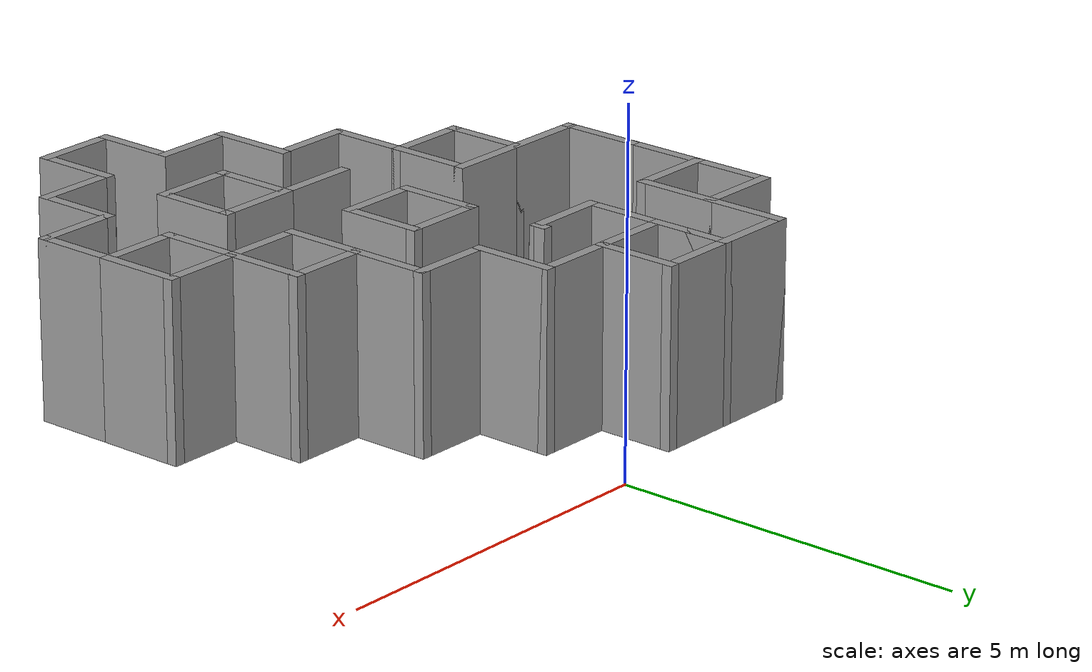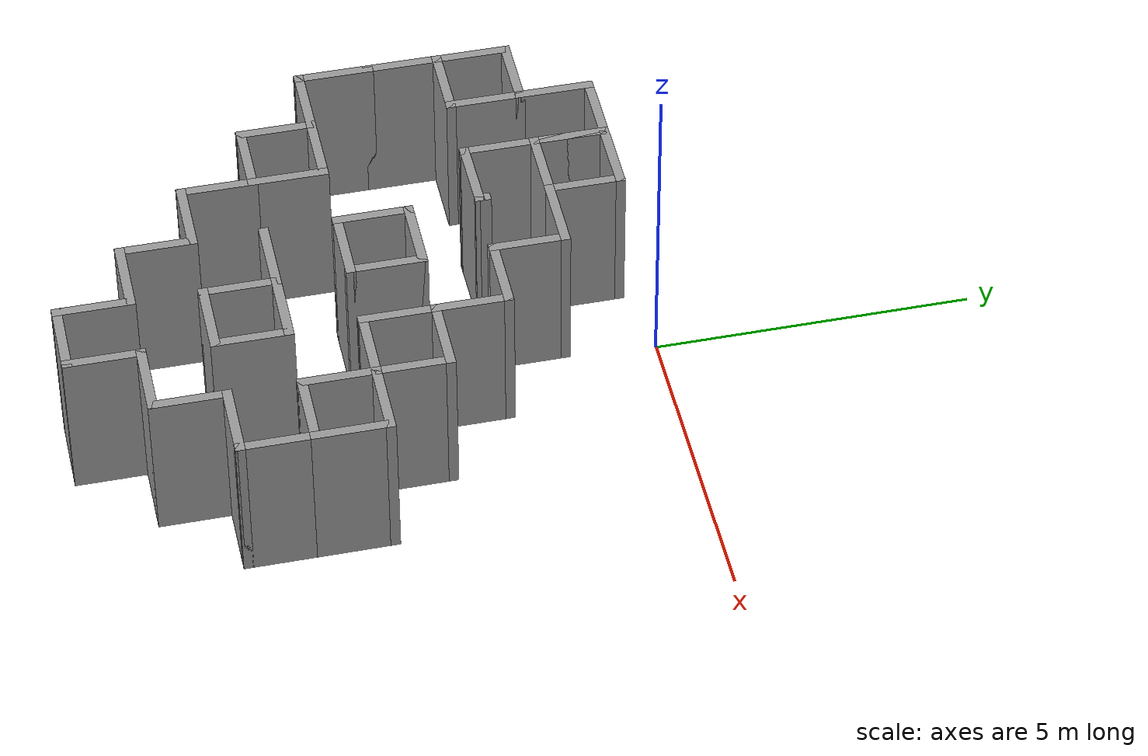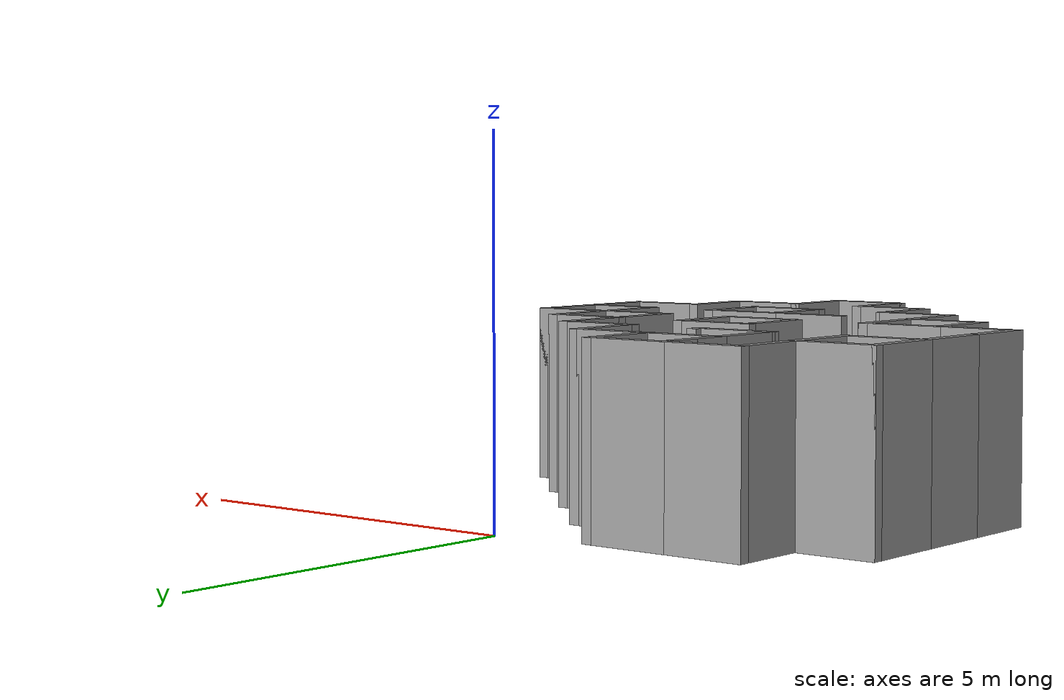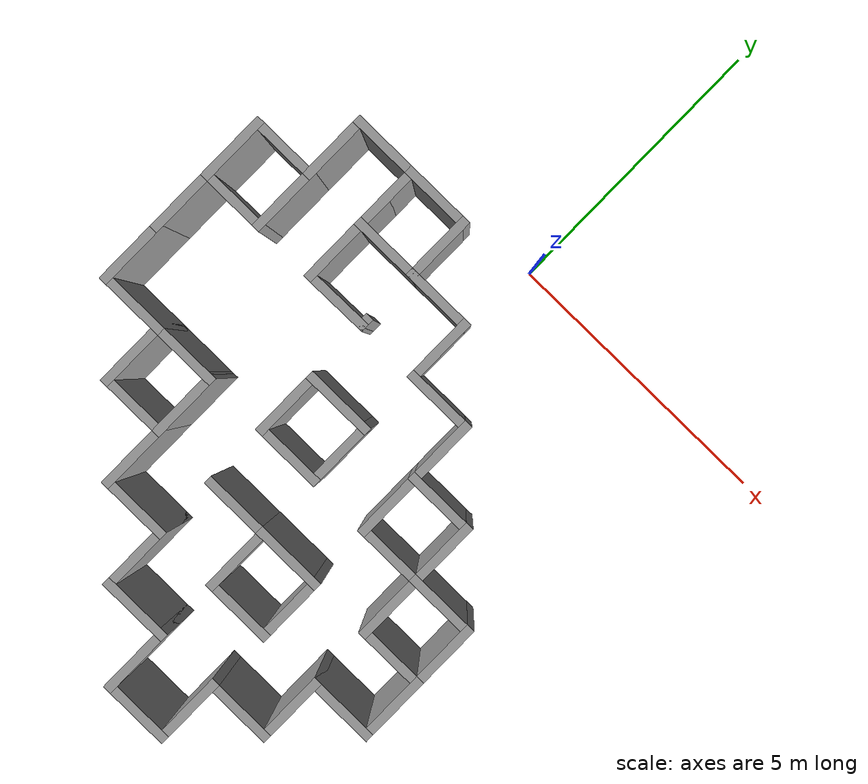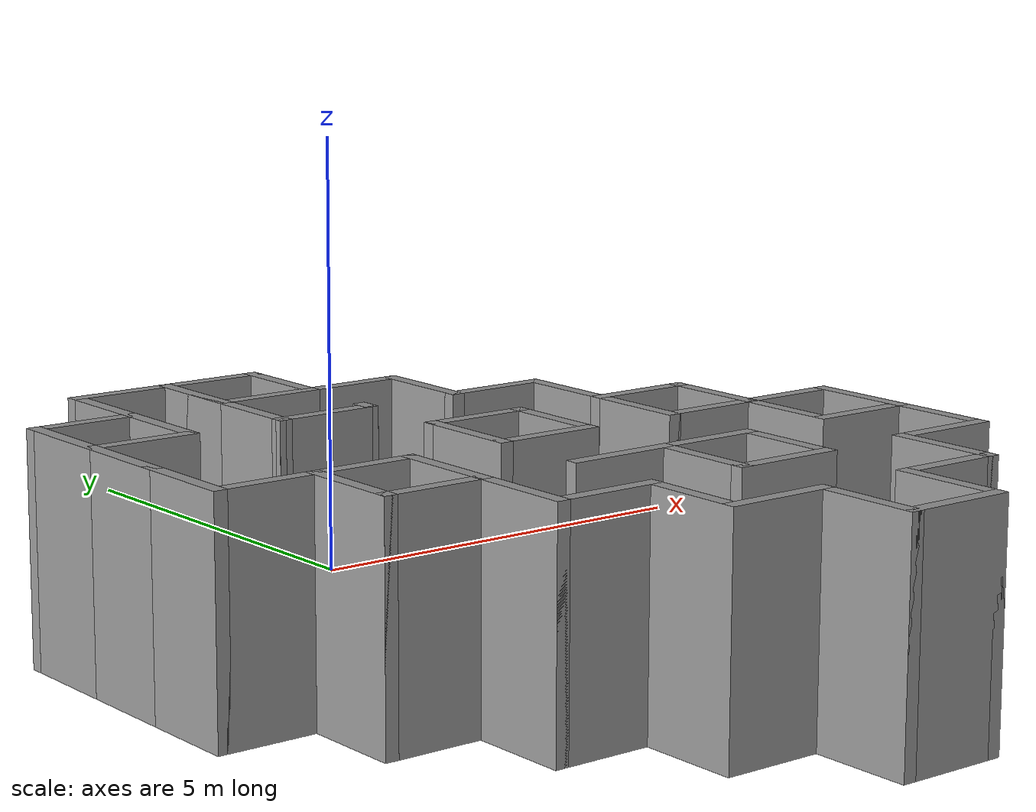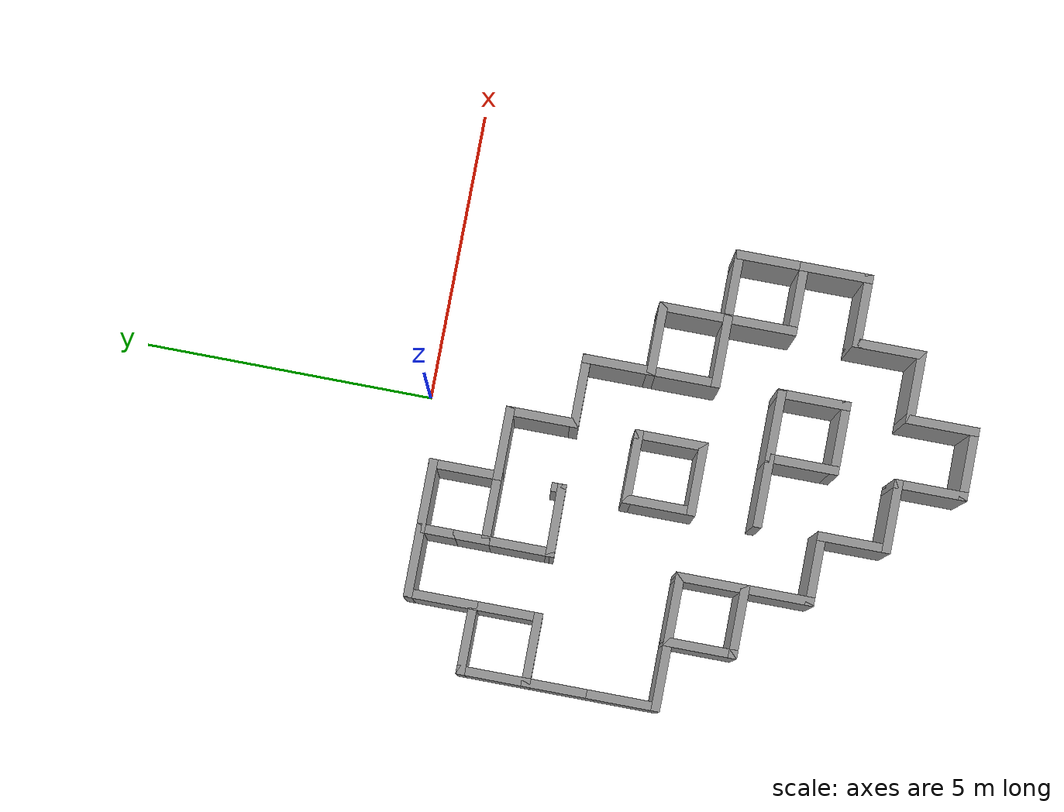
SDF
<?xml version='1.0'?>
<sdf version='1.7'>
  <model name='robotcup_map'>
    <pose>-0.7 -4.5975 0 0 -0 0</pose>
    <link name='Wall_0'>
      <collision name='Wall_0_Collision'>
        <geometry>
          <box>
            <size>1.25 0.15 2.5</size>
          </box>
        </geometry>
        <pose>0 0 1.25 0 -0 0</pose>
      </collision>
      <visual name='Wall_0_Visual'>
        <pose>0 0 1.25 0 -0 0</pose>
        <geometry>
          <box>
            <size>1.25 0.15 2.5</size>
          </box>
        </geometry>
        <material>
          <script>
            <uri>file://media/materials/scripts/gazebo.material</uri>
            <name>Gazebo/Grey</name>
          </script>
          <ambient>1 1 1 1</ambient>
        </material>
        <meta>
          <layer>0</layer>
        </meta>
      </visual>
      <pose>-3.85 2.6275 0 0 -0 -1.5708</pose>
    </link>
    <link name='Wall_1'>
      <collision name='Wall_1_Collision'>
        <geometry>
          <box>
            <size>1.25 0.15 2.5</size>
          </box>
        </geometry>
        <pose>0 0 1.25 0 -0 0</pose>
      </collision>
      <visual name='Wall_1_Visual'>
        <pose>0 0 1.25 0 -0 0</pose>
        <geometry>
          <box>
            <size>1.25 0.15 2.5</size>
          </box>
        </geometry>
        <material>
          <script>
            <uri>file://media/materials/scripts/gazebo.material</uri>
            <name>Gazebo/Grey</name>
          </script>
          <ambient>1 1 1 1</ambient>
        </material>
        <meta>
          <layer>0</layer>
        </meta>
      </visual>
      <pose>-3.85 1.5275 0 0 -0 -1.5708</pose>
    </link>
    <link name='Wall_10'>
      <collision name='Wall_10_Collision'>
        <geometry>
          <box>
            <size>1.25 0.15 2.5</size>
          </box>
        </geometry>
        <pose>0 0 1.25 0 -0 0</pose>
      </collision>
      <visual name='Wall_10_Visual'>
        <pose>0 0 1.25 0 -0 0</pose>
        <geometry>
          <box>
            <size>1.25 0.15 2.5</size>
          </box>
        </geometry>
        <material>
          <script>
            <uri>file://media/materials/scripts/gazebo.material</uri>
            <name>Gazebo/Grey</name>
          </script>
          <ambient>1 1 1 1</ambient>
        </material>
        <meta>
          <layer>0</layer>
        </meta>
      </visual>
      <pose>0 -3.4225 0 0 -0 0</pose>
    </link>
    <link name='Wall_13'>
      <collision name='Wall_13_Collision'>
        <geometry>
          <box>
            <size>1.25 0.15 2.5</size>
          </box>
        </geometry>
        <pose>0 0 1.25 0 -0 0</pose>
      </collision>
      <visual name='Wall_13_Visual'>
        <pose>0 0 1.25 0 -0 0</pose>
        <geometry>
          <box>
            <size>1.25 0.15 2.5</size>
          </box>
        </geometry>
        <material>
          <script>
            <uri>file://media/materials/scripts/gazebo.material</uri>
            <name>Gazebo/Grey</name>
          </script>
          <ambient>1 1 1 1</ambient>
        </material>
        <meta>
          <layer>0</layer>
        </meta>
      </visual>
      <pose>0.55 -3.9725 0 0 -0 -1.5708</pose>
    </link>
    <link name='Wall_15'>
      <collision name='Wall_15_Collision'>
        <geometry>
          <box>
            <size>1.25 0.15 2.5</size>
          </box>
        </geometry>
        <pose>0 0 1.25 0 -0 0</pose>
      </collision>
      <visual name='Wall_15_Visual'>
        <pose>0 0 1.25 0 -0 0</pose>
        <geometry>
          <box>
            <size>1.25 0.15 2.5</size>
          </box>
        </geometry>
        <material>
          <script>
            <uri>file://media/materials/scripts/gazebo.material</uri>
            <name>Gazebo/Grey</name>
          </script>
          <ambient>1 1 1 1</ambient>
        </material>
        <meta>
          <layer>0</layer>
        </meta>
      </visual>
      <pose>1.1 -4.5225 0 0 -0 0</pose>
    </link>
    <link name='Wall_16'>
      <collision name='Wall_16_Collision'>
        <geometry>
          <box>
            <size>1.25 0.15 2.5</size>
          </box>
        </geometry>
        <pose>0 0 1.25 0 -0 0</pose>
      </collision>
      <visual name='Wall_16_Visual'>
        <pose>0 0 1.25 0 -0 0</pose>
        <geometry>
          <box>
            <size>1.25 0.15 2.5</size>
          </box>
        </geometry>
        <material>
          <script>
            <uri>file://media/materials/scripts/gazebo.material</uri>
            <name>Gazebo/Grey</name>
          </script>
          <ambient>1 1 1 1</ambient>
        </material>
        <meta>
          <layer>0</layer>
        </meta>
      </visual>
      <pose>1.65 -3.9725 0 0 -0 1.5708</pose>
    </link>
    <link name='Wall_17'>
      <collision name='Wall_17_Collision'>
        <geometry>
          <box>
            <size>1.25 0.15 2.5</size>
          </box>
        </geometry>
        <pose>0 0 1.25 0 -0 0</pose>
      </collision>
      <visual name='Wall_17_Visual'>
        <pose>0 0 1.25 0 -0 0</pose>
        <geometry>
          <box>
            <size>1.25 0.15 2.5</size>
          </box>
        </geometry>
        <material>
          <script>
            <uri>file://media/materials/scripts/gazebo.material</uri>
            <name>Gazebo/Grey</name>
          </script>
          <ambient>1 1 1 1</ambient>
        </material>
        <meta>
          <layer>0</layer>
        </meta>
      </visual>
      <pose>2.2 -3.4225 0 0 -0 0</pose>
    </link>
    <link name='Wall_18'>
      <collision name='Wall_18_Collision'>
        <geometry>
          <box>
            <size>1.25 0.15 2.5</size>
          </box>
        </geometry>
        <pose>0 0 1.25 0 -0 0</pose>
      </collision>
      <visual name='Wall_18_Visual'>
        <pose>0 0 1.25 0 -0 0</pose>
        <geometry>
          <box>
            <size>1.25 0.15 2.5</size>
          </box>
        </geometry>
        <material>
          <script>
            <uri>file://media/materials/scripts/gazebo.material</uri>
            <name>Gazebo/Grey</name>
          </script>
          <ambient>1 1 1 1</ambient>
        </material>
        <meta>
          <layer>0</layer>
        </meta>
      </visual>
      <pose>2.75 -2.8725 0 0 -0 1.5708</pose>
    </link>
    <link name='Wall_19'>
      <collision name='Wall_19_Collision'>
        <geometry>
          <box>
            <size>1.25 0.15 2.5</size>
          </box>
        </geometry>
        <pose>0 0 1.25 0 -0 0</pose>
      </collision>
      <visual name='Wall_19_Visual'>
        <pose>0 0 1.25 0 -0 0</pose>
        <geometry>
          <box>
            <size>1.25 0.15 2.5</size>
          </box>
        </geometry>
        <material>
          <script>
            <uri>file://media/materials/scripts/gazebo.material</uri>
            <name>Gazebo/Grey</name>
          </script>
          <ambient>1 1 1 1</ambient>
        </material>
        <meta>
          <layer>0</layer>
        </meta>
      </visual>
      <pose>3.3 -2.3225 0 0 -0 0</pose>
    </link>
    <link name='Wall_2'>
      <collision name='Wall_2_Collision'>
        <geometry>
          <box>
            <size>1.25 0.15 2.5</size>
          </box>
        </geometry>
        <pose>0 0 1.25 0 -0 0</pose>
      </collision>
      <visual name='Wall_2_Visual'>
        <pose>0 0 1.25 0 -0 0</pose>
        <geometry>
          <box>
            <size>1.25 0.15 2.5</size>
          </box>
        </geometry>
        <material>
          <script>
            <uri>file://media/materials/scripts/gazebo.material</uri>
            <name>Gazebo/Grey</name>
          </script>
          <ambient>1 1 1 1</ambient>
        </material>
        <meta>
          <layer>0</layer>
        </meta>
      </visual>
      <pose>-3.85 0.4275 0 0 -0 -1.5708</pose>
    </link>
    <link name='Wall_20'>
      <collision name='Wall_20_Collision'>
        <geometry>
          <box>
            <size>1.25 0.15 2.5</size>
          </box>
        </geometry>
        <pose>0 0 1.25 0 -0 0</pose>
      </collision>
      <visual name='Wall_20_Visual'>
        <pose>0 0 1.25 0 -0 0</pose>
        <geometry>
          <box>
            <size>1.25 0.15 2.5</size>
          </box>
        </geometry>
        <material>
          <script>
            <uri>file://media/materials/scripts/gazebo.material</uri>
            <name>Gazebo/Grey</name>
          </script>
          <ambient>1 1 1 1</ambient>
        </material>
        <meta>
          <layer>0</layer>
        </meta>
      </visual>
      <pose>3.85 -1.7725 0 0 -0 1.5708</pose>
    </link>
    <link name='Wall_21'>
      <collision name='Wall_21_Collision'>
        <geometry>
          <box>
            <size>1.25 0.15 2.5</size>
          </box>
        </geometry>
        <pose>0 0 1.25 0 -0 0</pose>
      </collision>
      <visual name='Wall_21_Visual'>
        <pose>0 0 1.25 0 -0 0</pose>
        <geometry>
          <box>
            <size>1.25 0.15 2.5</size>
          </box>
        </geometry>
        <material>
          <script>
            <uri>file://media/materials/scripts/gazebo.material</uri>
            <name>Gazebo/Grey</name>
          </script>
          <ambient>1 1 1 1</ambient>
        </material>
        <meta>
          <layer>0</layer>
        </meta>
      </visual>
      <pose>3.85 -0.6725 0 0 -0 1.5708</pose>
    </link>
    <link name='Wall_22'>
      <collision name='Wall_22_Collision'>
        <geometry>
          <box>
            <size>1.25 0.15 2.5</size>
          </box>
        </geometry>
        <pose>0 0 1.25 0 -0 0</pose>
      </collision>
      <visual name='Wall_22_Visual'>
        <pose>0 0 1.25 0 -0 0</pose>
        <geometry>
          <box>
            <size>1.25 0.15 2.5</size>
          </box>
        </geometry>
        <material>
          <script>
            <uri>file://media/materials/scripts/gazebo.material</uri>
            <name>Gazebo/Grey</name>
          </script>
          <ambient>1 1 1 1</ambient>
        </material>
        <meta>
          <layer>0</layer>
        </meta>
      </visual>
      <pose>3.3 -0.1225 0 0 -0 3.14159</pose>
    </link>
    <link name='Wall_24'>
      <collision name='Wall_24_Collision'>
        <geometry>
          <box>
            <size>1.25 0.15 2.5</size>
          </box>
        </geometry>
        <pose>0 0 1.25 0 -0 0</pose>
      </collision>
      <visual name='Wall_24_Visual'>
        <pose>0 0 1.25 0 -0 0</pose>
        <geometry>
          <box>
            <size>1.25 0.15 2.5</size>
          </box>
        </geometry>
        <material>
          <script>
            <uri>file://media/materials/scripts/gazebo.material</uri>
            <name>Gazebo/Grey</name>
          </script>
          <ambient>1 1 1 1</ambient>
        </material>
        <meta>
          <layer>0</layer>
        </meta>
      </visual>
      <pose>2.75 0.4275 0 0 -0 1.5708</pose>
    </link>
    <link name='Wall_25'>
      <collision name='Wall_25_Collision'>
        <geometry>
          <box>
            <size>1.25 0.15 2.5</size>
          </box>
        </geometry>
        <pose>0 0 1.25 0 -0 0</pose>
      </collision>
      <visual name='Wall_25_Visual'>
        <pose>0 0 1.25 0 -0 0</pose>
        <geometry>
          <box>
            <size>1.25 0.15 2.5</size>
          </box>
        </geometry>
        <material>
          <script>
            <uri>file://media/materials/scripts/gazebo.material</uri>
            <name>Gazebo/Grey</name>
          </script>
          <ambient>1 1 1 1</ambient>
        </material>
        <meta>
          <layer>0</layer>
        </meta>
      </visual>
      <pose>2.2 0.9775 0 0 -0 3.14159</pose>
    </link>
    <link name='Wall_26'>
      <collision name='Wall_26_Collision'>
        <geometry>
          <box>
            <size>1.25 0.15 2.5</size>
          </box>
        </geometry>
        <pose>0 0 1.25 0 -0 0</pose>
      </collision>
      <visual name='Wall_26_Visual'>
        <pose>0 0 1.25 0 -0 0</pose>
        <geometry>
          <box>
            <size>1.25 0.15 2.5</size>
          </box>
        </geometry>
        <material>
          <script>
            <uri>file://media/materials/scripts/gazebo.material</uri>
            <name>Gazebo/Grey</name>
          </script>
          <ambient>1 1 1 1</ambient>
        </material>
        <meta>
          <layer>0</layer>
        </meta>
      </visual>
      <pose>1.65 1.5275 0 0 -0 1.5708</pose>
    </link>
    <link name='Wall_27'>
      <collision name='Wall_27_Collision'>
        <geometry>
          <box>
            <size>1.25 0.15 2.5</size>
          </box>
        </geometry>
        <pose>0 0 1.25 0 -0 0</pose>
      </collision>
      <visual name='Wall_27_Visual'>
        <pose>0 0 1.25 0 -0 0</pose>
        <geometry>
          <box>
            <size>1.25 0.15 2.5</size>
          </box>
        </geometry>
        <material>
          <script>
            <uri>file://media/materials/scripts/gazebo.material</uri>
            <name>Gazebo/Grey</name>
          </script>
          <ambient>1 1 1 1</ambient>
        </material>
        <meta>
          <layer>0</layer>
        </meta>
      </visual>
      <pose>1.1 2.0775 0 0 -0 3.14159</pose>
    </link>
    <link name='Wall_28'>
      <collision name='Wall_28_Collision'>
        <geometry>
          <box>
            <size>1.25 0.15 2.5</size>
          </box>
        </geometry>
        <pose>0 0 1.25 0 -0 0</pose>
      </collision>
      <visual name='Wall_28_Visual'>
        <pose>0 0 1.25 0 -0 0</pose>
        <geometry>
          <box>
            <size>1.25 0.15 2.5</size>
          </box>
        </geometry>
        <material>
          <script>
            <uri>file://media/materials/scripts/gazebo.material</uri>
            <name>Gazebo/Grey</name>
          </script>
          <ambient>1 1 1 1</ambient>
        </material>
        <meta>
          <layer>0</layer>
        </meta>
      </visual>
      <pose>0.55 2.6275 0 0 -0 1.5708</pose>
    </link>
    <link name='Wall_29'>
      <collision name='Wall_29_Collision'>
        <geometry>
          <box>
            <size>1.25 0.15 2.5</size>
          </box>
        </geometry>
        <pose>0 0 1.25 0 -0 0</pose>
      </collision>
      <visual name='Wall_29_Visual'>
        <pose>0 0 1.25 0 -0 0</pose>
        <geometry>
          <box>
            <size>1.25 0.15 2.5</size>
          </box>
        </geometry>
        <material>
          <script>
            <uri>file://media/materials/scripts/gazebo.material</uri>
            <name>Gazebo/Grey</name>
          </script>
          <ambient>1 1 1 1</ambient>
        </material>
        <meta>
          <layer>0</layer>
        </meta>
      </visual>
      <pose>0 3.1775 0 0 -0 3.14159</pose>
    </link>
    <link name='Wall_3'>
      <collision name='Wall_3_Collision'>
        <geometry>
          <box>
            <size>1.25 0.15 2.5</size>
          </box>
        </geometry>
        <pose>0 0 1.25 0 -0 0</pose>
      </collision>
      <visual name='Wall_3_Visual'>
        <pose>0 0 1.25 0 -0 0</pose>
        <geometry>
          <box>
            <size>1.25 0.15 2.5</size>
          </box>
        </geometry>
        <material>
          <script>
            <uri>file://media/materials/scripts/gazebo.material</uri>
            <name>Gazebo/Grey</name>
          </script>
          <ambient>1 1 1 1</ambient>
        </material>
        <meta>
          <layer>0</layer>
        </meta>
      </visual>
      <pose>-3.3 -0.1225 0 0 -0 0</pose>
    </link>
    <link name='Wall_30'>
      <collision name='Wall_30_Collision'>
        <geometry>
          <box>
            <size>0.15 0.15 2.5</size>
          </box>
        </geometry>
        <pose>0 0 1.25 0 -0 0</pose>
      </collision>
      <visual name='Wall_30_Visual'>
        <pose>0 0 1.25 0 -0 0</pose>
        <geometry>
          <box>
            <size>0.15 0.15 2.5</size>
          </box>
        </geometry>
        <material>
          <script>
            <uri>file://media/materials/scripts/gazebo.material</uri>
            <name>Gazebo/Grey</name>
          </script>
          <ambient>1 1 1 1</ambient>
        </material>
        <meta>
          <layer>0</layer>
        </meta>
      </visual>
      <pose>-0.55 3.1775 0 0 -0 0</pose>
    </link>
    <link name='Wall_32'>
      <collision name='Wall_32_Collision'>
        <geometry>
          <box>
            <size>1.25 0.15 2.5</size>
          </box>
        </geometry>
        <pose>0 0 1.25 0 -0 0</pose>
      </collision>
      <visual name='Wall_32_Visual'>
        <pose>0 0 1.25 0 -0 0</pose>
        <geometry>
          <box>
            <size>1.25 0.15 2.5</size>
          </box>
        </geometry>
        <material>
          <script>
            <uri>file://media/materials/scripts/gazebo.material</uri>
            <name>Gazebo/Grey</name>
          </script>
          <ambient>1 1 1 1</ambient>
        </material>
        <meta>
          <layer>0</layer>
        </meta>
      </visual>
      <pose>-0.55 3.7275 0 0 -0 1.5708</pose>
    </link>
    <link name='Wall_34'>
      <collision name='Wall_34_Collision'>
        <geometry>
          <box>
            <size>1.25 0.15 2.5</size>
          </box>
        </geometry>
        <pose>0 0 1.25 0 -0 0</pose>
      </collision>
      <visual name='Wall_34_Visual'>
        <pose>0 0 1.25 0 -0 0</pose>
        <geometry>
          <box>
            <size>1.25 0.15 2.5</size>
          </box>
        </geometry>
        <material>
          <script>
            <uri>file://media/materials/scripts/gazebo.material</uri>
            <name>Gazebo/Grey</name>
          </script>
          <ambient>1 1 1 1</ambient>
        </material>
        <meta>
          <layer>0</layer>
        </meta>
      </visual>
      <pose>-1.1 4.2775 0 0 -0 3.14159</pose>
    </link>
    <link name='Wall_35'>
      <collision name='Wall_35_Collision'>
        <geometry>
          <box>
            <size>1.25 0.15 2.5</size>
          </box>
        </geometry>
        <pose>0 0 1.25 0 -0 0</pose>
      </collision>
      <visual name='Wall_35_Visual'>
        <pose>0 0 1.25 0 -0 0</pose>
        <geometry>
          <box>
            <size>1.25 0.15 2.5</size>
          </box>
        </geometry>
        <material>
          <script>
            <uri>file://media/materials/scripts/gazebo.material</uri>
            <name>Gazebo/Grey</name>
          </script>
          <ambient>1 1 1 1</ambient>
        </material>
        <meta>
          <layer>0</layer>
        </meta>
      </visual>
      <pose>-2.2 4.2775 0 0 -0 3.14159</pose>
    </link>
    <link name='Wall_36'>
      <collision name='Wall_36_Collision'>
        <geometry>
          <box>
            <size>1.25 0.15 2.5</size>
          </box>
        </geometry>
        <pose>0 0 1.25 0 -0 0</pose>
      </collision>
      <visual name='Wall_36_Visual'>
        <pose>0 0 1.25 0 -0 0</pose>
        <geometry>
          <box>
            <size>1.25 0.15 2.5</size>
          </box>
        </geometry>
        <material>
          <script>
            <uri>file://media/materials/scripts/gazebo.material</uri>
            <name>Gazebo/Grey</name>
          </script>
          <ambient>1 1 1 1</ambient>
        </material>
        <meta>
          <layer>0</layer>
        </meta>
      </visual>
      <pose>-2.75 3.7275 0 0 -0 -1.5708</pose>
    </link>
    <link name='Wall_37'>
      <collision name='Wall_37_Collision'>
        <geometry>
          <box>
            <size>1.25 0.15 2.5</size>
          </box>
        </geometry>
        <pose>0 0 1.25 0 -0 0</pose>
      </collision>
      <visual name='Wall_37_Visual'>
        <pose>0 0 1.25 0 -0 0</pose>
        <geometry>
          <box>
            <size>1.25 0.15 2.5</size>
          </box>
        </geometry>
        <material>
          <script>
            <uri>file://media/materials/scripts/gazebo.material</uri>
            <name>Gazebo/Grey</name>
          </script>
          <ambient>1 1 1 1</ambient>
        </material>
        <meta>
          <layer>0</layer>
        </meta>
      </visual>
      <pose>-3.3 3.1775 0 0 -0 3.14159</pose>
    </link>
    <link name='Wall_39'>
      <collision name='Wall_39_Collision'>
        <geometry>
          <box>
            <size>1.25 0.15 2.5</size>
          </box>
        </geometry>
        <pose>0 0 1.25 0 -0 0</pose>
      </collision>
      <visual name='Wall_39_Visual'>
        <pose>0 0 1.25 0 -0 0</pose>
        <geometry>
          <box>
            <size>1.25 0.15 2.5</size>
          </box>
        </geometry>
        <material>
          <script>
            <uri>file://media/materials/scripts/gazebo.material</uri>
            <name>Gazebo/Grey</name>
          </script>
          <ambient>1 1 1 1</ambient>
        </material>
        <meta>
          <layer>0</layer>
        </meta>
      </visual>
      <pose>-2.75 2.6275 0 0 -0 -1.5708</pose>
    </link>
    <link name='Wall_4'>
      <collision name='Wall_4_Collision'>
        <geometry>
          <box>
            <size>1.25 0.15 2.5</size>
          </box>
        </geometry>
        <pose>0 0 1.25 0 -0 0</pose>
      </collision>
      <visual name='Wall_4_Visual'>
        <pose>0 0 1.25 0 -0 0</pose>
        <geometry>
          <box>
            <size>1.25 0.15 2.5</size>
          </box>
        </geometry>
        <material>
          <script>
            <uri>file://media/materials/scripts/gazebo.material</uri>
            <name>Gazebo/Grey</name>
          </script>
          <ambient>1 1 1 1</ambient>
        </material>
        <meta>
          <layer>0</layer>
        </meta>
      </visual>
      <pose>-2.75 -0.6725 0 0 -0 -1.5708</pose>
    </link>
    <link name='Wall_40'>
      <collision name='Wall_40_Collision'>
        <geometry>
          <box>
            <size>1.25 0.15 2.5</size>
          </box>
        </geometry>
        <pose>0 0 1.25 0 -0 0</pose>
      </collision>
      <visual name='Wall_40_Visual'>
        <pose>0 0 1.25 0 -0 0</pose>
        <geometry>
          <box>
            <size>1.25 0.15 2.5</size>
          </box>
        </geometry>
        <material>
          <script>
            <uri>file://media/materials/scripts/gazebo.material</uri>
            <name>Gazebo/Grey</name>
          </script>
          <ambient>1 1 1 1</ambient>
        </material>
        <meta>
          <layer>0</layer>
        </meta>
      </visual>
      <pose>-3.3 2.0775 0 0 -0 3.14159</pose>
    </link>
    <link name='Wall_42'>
      <collision name='Wall_42_Collision'>
        <geometry>
          <box>
            <size>1.25 0.15 2.5</size>
          </box>
        </geometry>
        <pose>0 0 1.25 0 -0 0</pose>
      </collision>
      <visual name='Wall_42_Visual'>
        <pose>0 0 1.25 0 -0 0</pose>
        <geometry>
          <box>
            <size>1.25 0.15 2.5</size>
          </box>
        </geometry>
        <material>
          <script>
            <uri>file://media/materials/scripts/gazebo.material</uri>
            <name>Gazebo/Grey</name>
          </script>
          <ambient>1 1 1 1</ambient>
        </material>
        <meta>
          <layer>0</layer>
        </meta>
      </visual>
      <pose>-1.1 3.1775 0 0 -0 3.14159</pose>
    </link>
    <link name='Wall_43'>
      <collision name='Wall_43_Collision'>
        <geometry>
          <box>
            <size>1.25 0.15 2.5</size>
          </box>
        </geometry>
        <pose>0 0 1.25 0 -0 0</pose>
      </collision>
      <visual name='Wall_43_Visual'>
        <pose>0 0 1.25 0 -0 0</pose>
        <geometry>
          <box>
            <size>1.25 0.15 2.5</size>
          </box>
        </geometry>
        <material>
          <script>
            <uri>file://media/materials/scripts/gazebo.material</uri>
            <name>Gazebo/Grey</name>
          </script>
          <ambient>1 1 1 1</ambient>
        </material>
        <meta>
          <layer>0</layer>
        </meta>
      </visual>
      <pose>-1.65 3.7275 0 0 -0 1.5708</pose>
    </link>
    <link name='Wall_44'>
      <collision name='Wall_44_Collision'>
        <geometry>
          <box>
            <size>1.25 0.15 2.5</size>
          </box>
        </geometry>
        <pose>0 0 1.25 0 -0 0</pose>
      </collision>
      <visual name='Wall_44_Visual'>
        <pose>0 0 1.25 0 -0 0</pose>
        <geometry>
          <box>
            <size>1.25 0.15 2.5</size>
          </box>
        </geometry>
        <material>
          <script>
            <uri>file://media/materials/scripts/gazebo.material</uri>
            <name>Gazebo/Grey</name>
          </script>
          <ambient>1 1 1 1</ambient>
        </material>
        <meta>
          <layer>0</layer>
        </meta>
      </visual>
      <pose>-1.65 3.7275 0 0 -0 -1.5708</pose>
    </link>
    <link name='Wall_45'>
      <collision name='Wall_45_Collision'>
        <geometry>
          <box>
            <size>1.25 0.15 2.5</size>
          </box>
        </geometry>
        <pose>0 0 1.25 0 -0 0</pose>
      </collision>
      <visual name='Wall_45_Visual'>
        <pose>0 0 1.25 0 -0 0</pose>
        <geometry>
          <box>
            <size>1.25 0.15 2.5</size>
          </box>
        </geometry>
        <material>
          <script>
            <uri>file://media/materials/scripts/gazebo.material</uri>
            <name>Gazebo/Grey</name>
          </script>
          <ambient>1 1 1 1</ambient>
        </material>
        <meta>
          <layer>0</layer>
        </meta>
      </visual>
      <pose>-1.65 2.6275 0 0 -0 -1.5708</pose>
    </link>
    <link name='Wall_47'>
      <collision name='Wall_47_Collision'>
        <geometry>
          <box>
            <size>1.25 0.15 2.5</size>
          </box>
        </geometry>
        <pose>0 0 1.25 0 -0 0</pose>
      </collision>
      <visual name='Wall_47_Visual'>
        <pose>0 0 1.25 0 -0 0</pose>
        <geometry>
          <box>
            <size>1.25 0.15 2.5</size>
          </box>
        </geometry>
        <material>
          <script>
            <uri>file://media/materials/scripts/gazebo.material</uri>
            <name>Gazebo/Grey</name>
          </script>
          <ambient>1 1 1 1</ambient>
        </material>
        <meta>
          <layer>0</layer>
        </meta>
      </visual>
      <pose>-2.2 -0.1225 0 0 -0 0</pose>
    </link>
    <link name='Wall_48'>
      <collision name='Wall_48_Collision'>
        <geometry>
          <box>
            <size>1.25 0.15 2.5</size>
          </box>
        </geometry>
        <pose>0 0 1.25 0 -0 0</pose>
      </collision>
      <visual name='Wall_48_Visual'>
        <pose>0 0 1.25 0 -0 0</pose>
        <geometry>
          <box>
            <size>1.25 0.15 2.5</size>
          </box>
        </geometry>
        <material>
          <script>
            <uri>file://media/materials/scripts/gazebo.material</uri>
            <name>Gazebo/Grey</name>
          </script>
          <ambient>1 1 1 1</ambient>
        </material>
        <meta>
          <layer>0</layer>
        </meta>
      </visual>
      <pose>-1.65 -0.6725 0 0 -0 -1.5708</pose>
    </link>
    <link name='Wall_5'>
      <collision name='Wall_5_Collision'>
        <geometry>
          <box>
            <size>1.25 0.15 2.5</size>
          </box>
        </geometry>
        <pose>0 0 1.25 0 -0 0</pose>
      </collision>
      <visual name='Wall_5_Visual'>
        <pose>0 0 1.25 0 -0 0</pose>
        <geometry>
          <box>
            <size>1.25 0.15 2.5</size>
          </box>
        </geometry>
        <material>
          <script>
            <uri>file://media/materials/scripts/gazebo.material</uri>
            <name>Gazebo/Grey</name>
          </script>
          <ambient>1 1 1 1</ambient>
        </material>
        <meta>
          <layer>0</layer>
        </meta>
      </visual>
      <pose>-2.2 -1.2225 0 0 -0 0</pose>
    </link>
    <link name='Wall_52'>
      <collision name='Wall_52_Collision'>
        <geometry>
          <box>
            <size>0.25 0.15 2.5</size>
          </box>
        </geometry>
        <pose>0 0 1.25 0 -0 0</pose>
      </collision>
      <visual name='Wall_52_Visual'>
        <pose>0 0 1.25 0 -0 0</pose>
        <geometry>
          <box>
            <size>0.25 0.15 2.5</size>
          </box>
        </geometry>
        <material>
          <script>
            <uri>file://media/materials/scripts/gazebo.material</uri>
            <name>Gazebo/Grey</name>
          </script>
          <ambient>1 1 1 1</ambient>
        </material>
        <meta>
          <layer>0</layer>
        </meta>
      </visual>
      <pose>-0.566568 2.13912 0 0 -0 1.5708</pose>
    </link>
    <link name='Wall_54'>
      <collision name='Wall_54_Collision'>
        <geometry>
          <box>
            <size>1.25 0.15 2.5</size>
          </box>
        </geometry>
        <pose>0 0 1.25 0 -0 0</pose>
      </collision>
      <visual name='Wall_54_Visual'>
        <pose>0 0 1.25 0 -0 0</pose>
        <geometry>
          <box>
            <size>1.25 0.15 2.5</size>
          </box>
        </geometry>
        <material>
          <script>
            <uri>file://media/materials/scripts/gazebo.material</uri>
            <name>Gazebo/Grey</name>
          </script>
          <ambient>1 1 1 1</ambient>
        </material>
        <meta>
          <layer>0</layer>
        </meta>
      </visual>
      <pose>0.013432 0.989121 0 0 -0 3.14159</pose>
    </link>
    <link name='Wall_56'>
      <collision name='Wall_56_Collision'>
        <geometry>
          <box>
            <size>1.25 0.15 2.5</size>
          </box>
        </geometry>
        <pose>0 0 1.25 0 -0 0</pose>
      </collision>
      <visual name='Wall_56_Visual'>
        <pose>0 0 1.25 0 -0 0</pose>
        <geometry>
          <box>
            <size>1.25 0.15 2.5</size>
          </box>
        </geometry>
        <material>
          <script>
            <uri>file://media/materials/scripts/gazebo.material</uri>
            <name>Gazebo/Grey</name>
          </script>
          <ambient>1 1 1 1</ambient>
        </material>
        <meta>
          <layer>0</layer>
        </meta>
      </visual>
      <pose>1.65 0.4275 0 0 -0 -1.5708</pose>
    </link>
    <link name='Wall_57'>
      <collision name='Wall_57_Collision'>
        <geometry>
          <box>
            <size>1.25 0.15 2.5</size>
          </box>
        </geometry>
        <pose>0 0 1.25 0 -0 0</pose>
      </collision>
      <visual name='Wall_57_Visual'>
        <pose>0 0 1.25 0 -0 0</pose>
        <geometry>
          <box>
            <size>1.25 0.15 2.5</size>
          </box>
        </geometry>
        <material>
          <script>
            <uri>file://media/materials/scripts/gazebo.material</uri>
            <name>Gazebo/Grey</name>
          </script>
          <ambient>1 1 1 1</ambient>
        </material>
        <meta>
          <layer>0</layer>
        </meta>
      </visual>
      <pose>2.2 -0.1225 0 0 -0 0</pose>
    </link>
    <link name='Wall_58'>
      <collision name='Wall_58_Collision'>
        <geometry>
          <box>
            <size>1.25 0.15 2.5</size>
          </box>
        </geometry>
        <pose>0 0 1.25 0 -0 0</pose>
      </collision>
      <visual name='Wall_58_Visual'>
        <pose>0 0 1.25 0 -0 0</pose>
        <geometry>
          <box>
            <size>1.25 0.15 2.5</size>
          </box>
        </geometry>
        <material>
          <script>
            <uri>file://media/materials/scripts/gazebo.material</uri>
            <name>Gazebo/Grey</name>
          </script>
          <ambient>1 1 1 1</ambient>
        </material>
        <meta>
          <layer>0</layer>
        </meta>
      </visual>
      <pose>2.75 -0.6725 0 0 -0 -1.5708</pose>
    </link>
    <link name='Wall_59'>
      <collision name='Wall_59_Collision'>
        <geometry>
          <box>
            <size>1.25 0.15 2.5</size>
          </box>
        </geometry>
        <pose>0 0 1.25 0 -0 0</pose>
      </collision>
      <visual name='Wall_59_Visual'>
        <pose>0 0 1.25 0 -0 0</pose>
        <geometry>
          <box>
            <size>1.25 0.15 2.5</size>
          </box>
        </geometry>
        <material>
          <script>
            <uri>file://media/materials/scripts/gazebo.material</uri>
            <name>Gazebo/Grey</name>
          </script>
          <ambient>1 1 1 1</ambient>
        </material>
        <meta>
          <layer>0</layer>
        </meta>
      </visual>
      <pose>3.3 -1.2225 0 0 -0 0</pose>
    </link>
    <link name='Wall_61'>
      <collision name='Wall_61_Collision'>
        <geometry>
          <box>
            <size>1.23349 0.15 2.5</size>
          </box>
        </geometry>
        <pose>0 0 1.25 0 -0 0</pose>
      </collision>
      <visual name='Wall_61_Visual'>
        <pose>0 0 1.25 0 -0 0</pose>
        <geometry>
          <box>
            <size>1.23349 0.15 2.5</size>
          </box>
        </geometry>
        <material>
          <script>
            <uri>file://media/materials/scripts/gazebo.material</uri>
            <name>Gazebo/Grey</name>
          </script>
          <ambient>1 1 1 1</ambient>
        </material>
        <meta>
          <layer>0</layer>
        </meta>
      </visual>
      <pose>-1.10828 2.08331 0 0 -0 0.010726</pose>
    </link>
    <link name='Wall_63'>
      <collision name='Wall_63_Collision'>
        <geometry>
          <box>
            <size>1.25 0.15 2.5</size>
          </box>
        </geometry>
        <pose>0 0 1.25 0 -0 0</pose>
      </collision>
      <visual name='Wall_63_Visual'>
        <pose>0 0 1.25 0 -0 0</pose>
        <geometry>
          <box>
            <size>1.25 0.15 2.5</size>
          </box>
        </geometry>
        <material>
          <script>
            <uri>file://media/materials/scripts/gazebo.material</uri>
            <name>Gazebo/Grey</name>
          </script>
          <ambient>1 1 1 1</ambient>
        </material>
        <meta>
          <layer>0</layer>
        </meta>
      </visual>
      <pose>1.12679 -1.23455 0 0 -0 3.14159</pose>
    </link>
    <link name='Wall_64'>
      <collision name='Wall_64_Collision'>
        <geometry>
          <box>
            <size>1.25 0.15 2.5</size>
          </box>
        </geometry>
        <pose>0 0 1.25 0 -0 0</pose>
      </collision>
      <visual name='Wall_64_Visual'>
        <pose>0 0 1.25 0 -0 0</pose>
        <geometry>
          <box>
            <size>1.25 0.15 2.5</size>
          </box>
        </geometry>
        <material>
          <script>
            <uri>file://media/materials/scripts/gazebo.material</uri>
            <name>Gazebo/Grey</name>
          </script>
          <ambient>1 1 1 1</ambient>
        </material>
        <meta>
          <layer>0</layer>
        </meta>
      </visual>
      <pose>0.576795 -1.78455 0 0 -0 -1.5708</pose>
    </link>
    <link name='Wall_65'>
      <collision name='Wall_65_Collision'>
        <geometry>
          <box>
            <size>1.25 0.15 2.5</size>
          </box>
        </geometry>
        <pose>0 0 1.25 0 -0 0</pose>
      </collision>
      <visual name='Wall_65_Visual'>
        <pose>0 0 1.25 0 -0 0</pose>
        <geometry>
          <box>
            <size>1.25 0.15 2.5</size>
          </box>
        </geometry>
        <material>
          <script>
            <uri>file://media/materials/scripts/gazebo.material</uri>
            <name>Gazebo/Grey</name>
          </script>
          <ambient>1 1 1 1</ambient>
        </material>
        <meta>
          <layer>0</layer>
        </meta>
      </visual>
      <pose>1.12679 -2.33455 0 0 -0 0</pose>
    </link>
    <link name='Wall_66'>
      <collision name='Wall_66_Collision'>
        <geometry>
          <box>
            <size>1.25 0.15 2.5</size>
          </box>
        </geometry>
        <pose>0 0 1.25 0 -0 0</pose>
      </collision>
      <visual name='Wall_66_Visual'>
        <pose>0 0 1.25 0 -0 0</pose>
        <geometry>
          <box>
            <size>1.25 0.15 2.5</size>
          </box>
        </geometry>
        <material>
          <script>
            <uri>file://media/materials/scripts/gazebo.material</uri>
            <name>Gazebo/Grey</name>
          </script>
          <ambient>1 1 1 1</ambient>
        </material>
        <meta>
          <layer>0</layer>
        </meta>
      </visual>
      <pose>1.6768 -1.78455 0 0 -0 1.5708</pose>
    </link>
    <link name='Wall_68'>
      <collision name='Wall_68_Collision'>
        <geometry>
          <box>
            <size>1.25 0.15 2.5</size>
          </box>
        </geometry>
        <pose>0 0 1.25 0 -0 0</pose>
      </collision>
      <visual name='Wall_68_Visual'>
        <pose>0 0 1.25 0 -0 0</pose>
        <geometry>
          <box>
            <size>1.25 0.15 2.5</size>
          </box>
        </geometry>
        <material>
          <script>
            <uri>file://media/materials/scripts/gazebo.material</uri>
            <name>Gazebo/Grey</name>
          </script>
          <ambient>1 1 1 1</ambient>
        </material>
        <meta>
          <layer>0</layer>
        </meta>
      </visual>
      <pose>0.026795 -1.23455 0 0 -0 3.14159</pose>
    </link>
    <link name='Wall_7'>
      <collision name='Wall_7_Collision'>
        <geometry>
          <box>
            <size>1.25 0.15 2.5</size>
          </box>
        </geometry>
        <pose>0 0 1.25 0 -0 0</pose>
      </collision>
      <visual name='Wall_7_Visual'>
        <pose>0 0 1.25 0 -0 0</pose>
        <geometry>
          <box>
            <size>1.25 0.15 2.5</size>
          </box>
        </geometry>
        <material>
          <script>
            <uri>file://media/materials/scripts/gazebo.material</uri>
            <name>Gazebo/Grey</name>
          </script>
          <ambient>1 1 1 1</ambient>
        </material>
        <meta>
          <layer>0</layer>
        </meta>
      </visual>
      <pose>-1.65 -1.7725 0 0 -0 -1.5708</pose>
    </link>
    <link name='Wall_70'>
      <collision name='Wall_70_Collision'>
        <geometry>
          <box>
            <size>1.25 0.15 2.5</size>
          </box>
        </geometry>
        <pose>0 0 1.25 0 -0 0</pose>
      </collision>
      <visual name='Wall_70_Visual'>
        <pose>0 0 1.25 0 -0 0</pose>
        <geometry>
          <box>
            <size>1.25 0.15 2.5</size>
          </box>
        </geometry>
        <material>
          <script>
            <uri>file://media/materials/scripts/gazebo.material</uri>
            <name>Gazebo/Grey</name>
          </script>
          <ambient>1 1 1 1</ambient>
        </material>
        <meta>
          <layer>0</layer>
        </meta>
      </visual>
      <pose>-0.536568 0.439121 0 0 -0 -1.5708</pose>
    </link>
    <link name='Wall_71'>
      <collision name='Wall_71_Collision'>
        <geometry>
          <box>
            <size>1.25 0.15 2.5</size>
          </box>
        </geometry>
        <pose>0 0 1.25 0 -0 0</pose>
      </collision>
      <visual name='Wall_71_Visual'>
        <pose>0 0 1.25 0 -0 0</pose>
        <geometry>
          <box>
            <size>1.25 0.15 2.5</size>
          </box>
        </geometry>
        <material>
          <script>
            <uri>file://media/materials/scripts/gazebo.material</uri>
            <name>Gazebo/Grey</name>
          </script>
          <ambient>1 1 1 1</ambient>
        </material>
        <meta>
          <layer>0</layer>
        </meta>
      </visual>
      <pose>0.013432 -0.110878 0 0 -0 0</pose>
    </link>
    <link name='Wall_72'>
      <collision name='Wall_72_Collision'>
        <geometry>
          <box>
            <size>1.25 0.15 2.5</size>
          </box>
        </geometry>
        <pose>0 0 1.25 0 -0 0</pose>
      </collision>
      <visual name='Wall_72_Visual'>
        <pose>0 0 1.25 0 -0 0</pose>
        <geometry>
          <box>
            <size>1.25 0.15 2.5</size>
          </box>
        </geometry>
        <material>
          <script>
            <uri>file://media/materials/scripts/gazebo.material</uri>
            <name>Gazebo/Grey</name>
          </script>
          <ambient>1 1 1 1</ambient>
        </material>
        <meta>
          <layer>0</layer>
        </meta>
      </visual>
      <pose>0.563432 0.439121 0 0 -0 1.5708</pose>
    </link>
    <link name='Wall_8'>
      <collision name='Wall_8_Collision'>
        <geometry>
          <box>
            <size>1.25 0.15 2.5</size>
          </box>
        </geometry>
        <pose>0 0 1.25 0 -0 0</pose>
      </collision>
      <visual name='Wall_8_Visual'>
        <pose>0 0 1.25 0 -0 0</pose>
        <geometry>
          <box>
            <size>1.25 0.15 2.5</size>
          </box>
        </geometry>
        <material>
          <script>
            <uri>file://media/materials/scripts/gazebo.material</uri>
            <name>Gazebo/Grey</name>
          </script>
          <ambient>1 1 1 1</ambient>
        </material>
        <meta>
          <layer>0</layer>
        </meta>
      </visual>
      <pose>-1.1 -2.3225 0 0 -0 0</pose>
    </link>
    <link name='Wall_9'>
      <collision name='Wall_9_Collision'>
        <geometry>
          <box>
            <size>1.25 0.15 2.5</size>
          </box>
        </geometry>
        <pose>0 0 1.25 0 -0 0</pose>
      </collision>
      <visual name='Wall_9_Visual'>
        <pose>0 0 1.25 0 -0 0</pose>
        <geometry>
          <box>
            <size>1.25 0.15 2.5</size>
          </box>
        </geometry>
        <material>
          <script>
            <uri>file://media/materials/scripts/gazebo.material</uri>
            <name>Gazebo/Grey</name>
          </script>
          <ambient>1 1 1 1</ambient>
        </material>
        <meta>
          <layer>0</layer>
        </meta>
      </visual>
      <pose>-0.55 -2.8725 0 0 -0 -1.5708</pose>
    </link>
    <static>1</static>
  </model>
</sdf>
